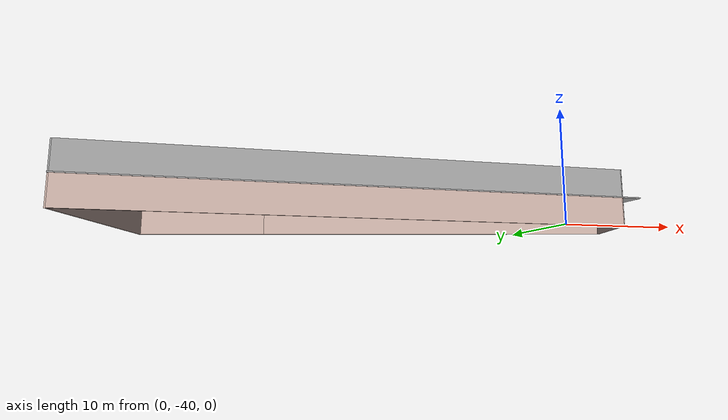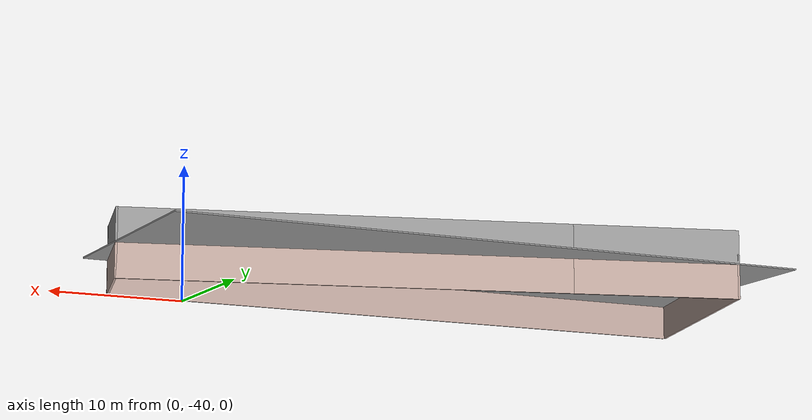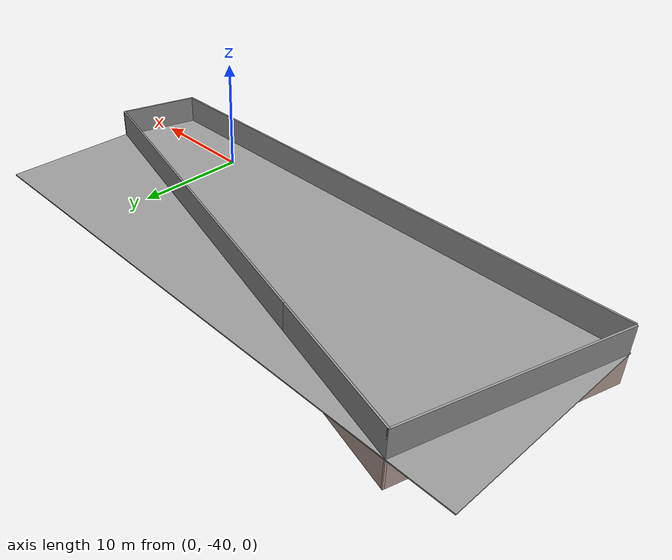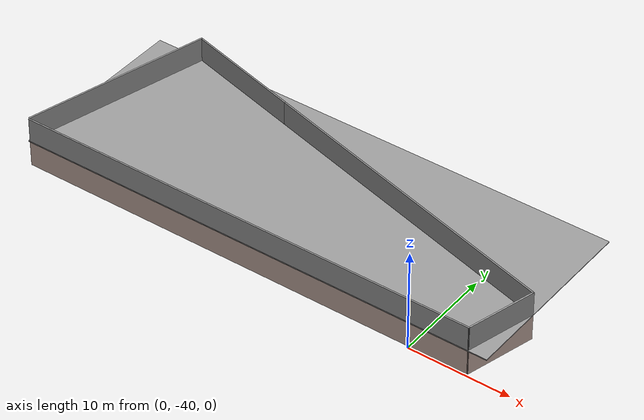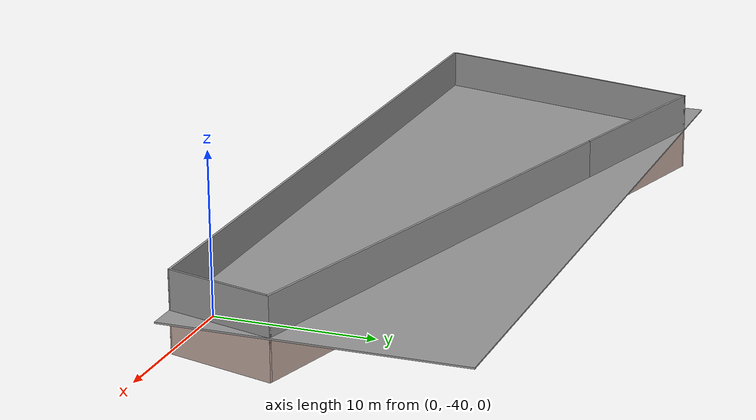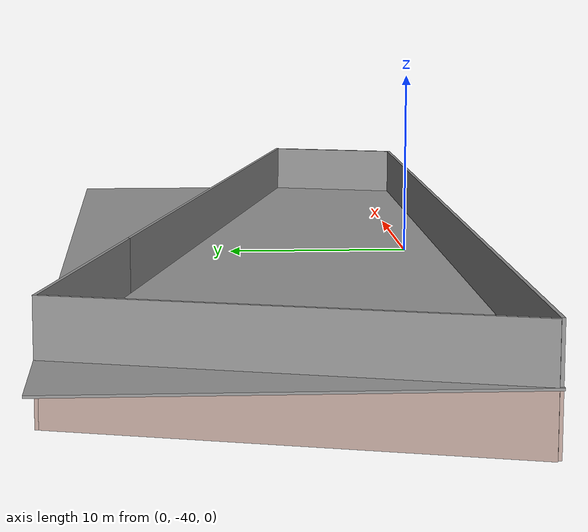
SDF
<?xml version='1.0'?>
<sdf version='1.6'>
  <model name='building1'>
    <pose frame=''>-16.4094 -30.7065 0 0 -0 0</pose>
    <link name='Floor_16'>
      <collision name='Floor_16_Collision'>
        <geometry>
          <box>
            <size>47.9329 18.3049 0.1</size>
          </box>
        </geometry>
        <pose frame=''>0 0 0.05 0 -0 0</pose>
      </collision>
      <visual name='Floor_16_Visual'>
        <pose frame=''>0 0 0.05 0 -0 0</pose>
        <geometry>
          <box>
            <size>47.9329 18.3049 0.1</size>
          </box>
        </geometry>
        <material>
          <script>
            <uri>file://media/materials/scripts/gazebo.material</uri>
            <name>Gazebo/Grey</name>
          </script>
          <ambient>1 1 1 1</ambient>
        </material>
        <meta>
          <layer>1</layer>
        </meta>
      </visual>
      <pose frame=''>1.4e-05 -5.4e-05 2.5 0 -0 0</pose>
    </link>
    <link name='Wall_22'>
      <collision name='Wall_22_Collision'>
        <geometry>
          <box>
            <size>12.25 0.15 2.5</size>
          </box>
        </geometry>
        <pose frame=''>0 0 1.25 0 -0 0</pose>
      </collision>
      <visual name='Wall_22_Visual'>
        <pose frame=''>0 0 1.25 0 -0 0</pose>
        <geometry>
          <box>
            <size>12.25 0.15 2.5</size>
          </box>
        </geometry>
        <material>
          <script>
            <uri>file://media/materials/scripts/gazebo.material</uri>
            <name>Gazebo/Grey</name>
          </script>
          <ambient>0.760784 0.662745 0.627451 1</ambient>
        </material>
        <meta>
          <layer>0</layer>
        </meta>
      </visual>
      <pose frame=''>-13.2168 7.49464 0 0 -0 -0.261809</pose>
    </link>
    <link name='Wall_23'>
      <collision name='Wall_23_Collision'>
        <geometry>
          <box>
            <size>32.5 0.15 2.5</size>
          </box>
        </geometry>
        <pose frame=''>0 0 1.25 0 -0 0</pose>
      </collision>
      <visual name='Wall_23_Visual'>
        <pose frame=''>0 0 1.25 0 -0 0</pose>
        <geometry>
          <box>
            <size>32.5 0.15 2.5</size>
          </box>
        </geometry>
        <material>
          <script>
            <uri>file://media/materials/scripts/gazebo.material</uri>
            <name>Gazebo/Grey</name>
          </script>
          <ambient>0.760784 0.662745 0.627451 1</ambient>
        </material>
        <meta>
          <layer>0</layer>
        </meta>
      </visual>
      <pose frame=''>8.25078 1.74235 0 0 -0 -0.261799</pose>
    </link>
    <link name='Wall_24'>
      <collision name='Wall_24_Collision'>
        <geometry>
          <box>
            <size>7 0.15 2.5</size>
          </box>
        </geometry>
        <pose frame=''>0 0 1.25 0 -0 0</pose>
      </collision>
      <visual name='Wall_24_Visual'>
        <pose frame=''>0 0 1.25 0 -0 0</pose>
        <geometry>
          <box>
            <size>7 0.15 2.5</size>
          </box>
        </geometry>
        <material>
          <script>
            <uri>file://media/materials/scripts/gazebo.material</uri>
            <name>Gazebo/Grey</name>
          </script>
          <ambient>0.760784 0.662745 0.627451 1</ambient>
        </material>
        <meta>
          <layer>0</layer>
        </meta>
      </visual>
      <pose frame=''>22.9882 -5.75234 0 0 -0 -1.8326</pose>
    </link>
    <link name='Wall_25'>
      <collision name='Wall_25_Collision'>
        <geometry>
          <box>
            <size>46 0.15 2.5</size>
          </box>
        </geometry>
        <pose frame=''>0 0 1.25 0 -0 0</pose>
      </collision>
      <visual name='Wall_25_Visual'>
        <pose frame=''>0 0 1.25 0 -0 0</pose>
        <geometry>
          <box>
            <size>46 0.15 2.5</size>
          </box>
        </geometry>
        <material>
          <script>
            <uri>file://media/materials/scripts/gazebo.material</uri>
            <name>Gazebo/Grey</name>
          </script>
          <ambient>0.760784 0.662745 0.627451 1</ambient>
        </material>
        <meta>
          <layer>0</layer>
        </meta>
      </visual>
      <pose frame=''>-0.823283 -9.06064 0 0 -0 3.14159</pose>
    </link>
    <link name='Wall_27'>
      <collision name='Wall_27_Collision'>
        <geometry>
          <box>
            <size>18.75 0.15 2.5</size>
          </box>
        </geometry>
        <pose frame=''>0 0 1.25 0 -0 0</pose>
      </collision>
      <visual name='Wall_27_Visual'>
        <pose frame=''>0 0 1.25 0 -0 0</pose>
        <geometry>
          <box>
            <size>18.75 0.15 2.5</size>
          </box>
        </geometry>
        <material>
          <script>
            <uri>file://media/materials/scripts/gazebo.material</uri>
            <name>Gazebo/Grey</name>
          </script>
          <ambient>0.760784 0.662745 0.627451 1</ambient>
        </material>
        <meta>
          <layer>0</layer>
        </meta>
      </visual>
      <pose frame=''>-21.4676 0.077531 0 0 -0 -1.8326</pose>
    </link>
    <link name='Wall_69'>
      <collision name='Wall_69_Collision'>
        <geometry>
          <box>
            <size>12.2498 0.15 2.5</size>
          </box>
        </geometry>
        <pose frame=''>0 0 1.25 0 -0 0</pose>
      </collision>
      <visual name='Wall_69_Visual'>
        <pose frame=''>0 0 1.25 0 -0 0</pose>
        <geometry>
          <box>
            <size>12.2498 0.15 2.5</size>
          </box>
        </geometry>
        <material>
          <script>
            <uri>file://media/materials/scripts/gazebo.material</uri>
            <name>Gazebo/Grey</name>
          </script>
          <ambient>1 1 1 1</ambient>
        </material>
        <meta>
          <layer>1</layer>
        </meta>
      </visual>
      <pose frame=''>-13.2168 7.49464 2.5 0 -0 -0.261809</pose>
    </link>
    <link name='Wall_70'>
      <collision name='Wall_70_Collision'>
        <geometry>
          <box>
            <size>32.5 0.15 2.5</size>
          </box>
        </geometry>
        <pose frame=''>0 0 1.25 0 -0 0</pose>
      </collision>
      <visual name='Wall_70_Visual'>
        <pose frame=''>0 0 1.25 0 -0 0</pose>
        <geometry>
          <box>
            <size>32.5 0.15 2.5</size>
          </box>
        </geometry>
        <material>
          <script>
            <uri>file://media/materials/scripts/gazebo.material</uri>
            <name>Gazebo/Grey</name>
          </script>
          <ambient>1 1 1 1</ambient>
        </material>
        <meta>
          <layer>1</layer>
        </meta>
      </visual>
      <pose frame=''>8.25078 1.74235 2.5 0 -0 -0.261799</pose>
    </link>
    <link name='Wall_71'>
      <collision name='Wall_71_Collision'>
        <geometry>
          <box>
            <size>7 0.15 2.5</size>
          </box>
        </geometry>
        <pose frame=''>0 0 1.25 0 -0 0</pose>
      </collision>
      <visual name='Wall_71_Visual'>
        <pose frame=''>0 0 1.25 0 -0 0</pose>
        <geometry>
          <box>
            <size>7 0.15 2.5</size>
          </box>
        </geometry>
        <material>
          <script>
            <uri>file://media/materials/scripts/gazebo.material</uri>
            <name>Gazebo/Grey</name>
          </script>
          <ambient>1 1 1 1</ambient>
        </material>
        <meta>
          <layer>1</layer>
        </meta>
      </visual>
      <pose frame=''>22.9882 -5.75234 2.5 0 -0 -1.8326</pose>
    </link>
    <link name='Wall_72'>
      <collision name='Wall_72_Collision'>
        <geometry>
          <box>
            <size>46 0.15 2.5</size>
          </box>
        </geometry>
        <pose frame=''>0 0 1.25 0 -0 0</pose>
      </collision>
      <visual name='Wall_72_Visual'>
        <pose frame=''>0 0 1.25 0 -0 0</pose>
        <geometry>
          <box>
            <size>46 0.15 2.5</size>
          </box>
        </geometry>
        <material>
          <script>
            <uri>file://media/materials/scripts/gazebo.material</uri>
            <name>Gazebo/Grey</name>
          </script>
          <ambient>1 1 1 1</ambient>
        </material>
        <meta>
          <layer>1</layer>
        </meta>
      </visual>
      <pose frame=''>-0.823283 -9.06064 2.5 0 -0 3.14159</pose>
    </link>
    <link name='Wall_73'>
      <collision name='Wall_73_Collision'>
        <geometry>
          <box>
            <size>18.7498 0.15 2.5</size>
          </box>
        </geometry>
        <pose frame=''>0 0 1.25 0 -0 0</pose>
      </collision>
      <visual name='Wall_73_Visual'>
        <pose frame=''>0 0 1.25 0 -0 0</pose>
        <geometry>
          <box>
            <size>18.7498 0.15 2.5</size>
          </box>
        </geometry>
        <material>
          <script>
            <uri>file://media/materials/scripts/gazebo.material</uri>
            <name>Gazebo/Grey</name>
          </script>
          <ambient>1 1 1 1</ambient>
        </material>
        <meta>
          <layer>1</layer>
        </meta>
      </visual>
      <pose frame=''>-21.4676 0.077531 2.5 0 -0 -1.8326</pose>
    </link>
    <static>1</static>
  </model>
</sdf>
